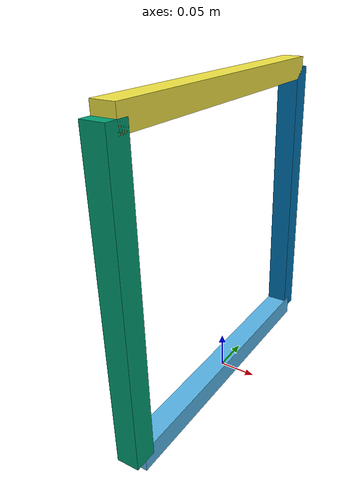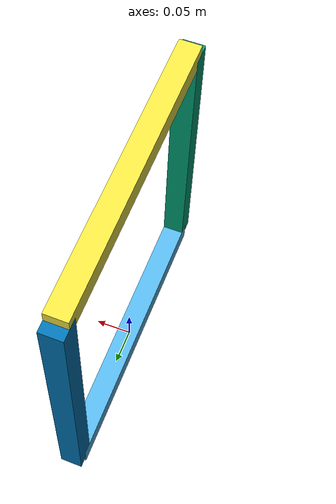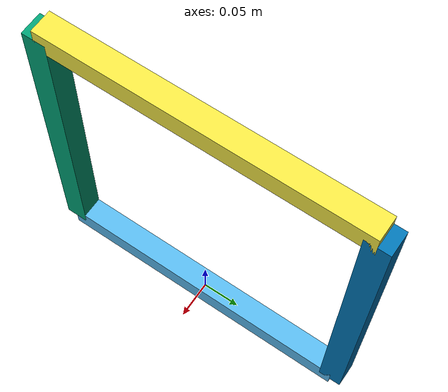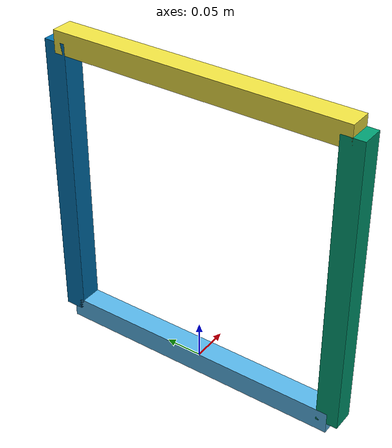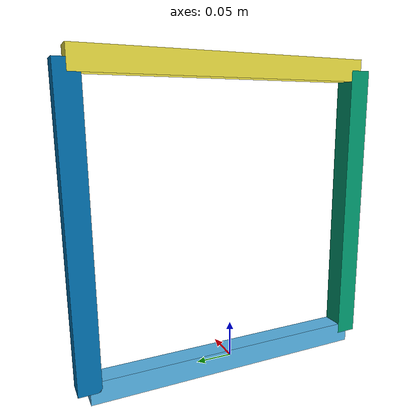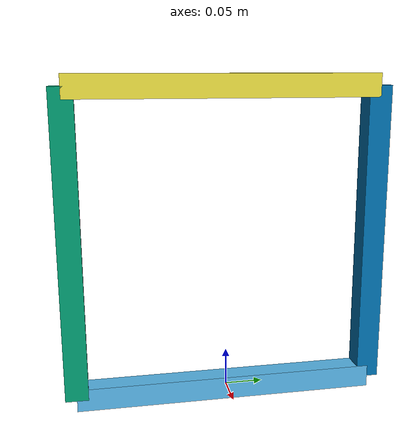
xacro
<?xml version="1.0" ?>
<robot xmlns:xacro="http://ros.org/wiki/xacro" name="four_bar_linkage">

<xacro:property name="h" value="0.03" />
<xacro:property name="w" value="0.4" />
<xacro:property name="d" value="0.03" />
<xacro:property name="m" value="1." />
<xacro:property name="PI" value="3.1415" />

<link name="world"/>

<link name="base_link">
	<inertial>
		<origin rpy="0 0 0" xyz="0 0 0"/>
		<mass value="${m}"/>
		<inertia ixx="${(m/12.) * (h**2 + w**2)}" ixy="0." ixz="0." iyy="${(m/12.) * (h**2 + d**2)}" iyz="0." izz="${(m/12.) * (w**2 + d**2)}"/>
	</inertial>
	<visual>
		<origin rpy="0 0 0" xyz="0 0 0"/>
		<material name=""/>
		<geometry name="">
			<box size="${d} ${w} ${h}"/>
		</geometry>
	</visual>
	<collision>
		<origin rpy="0 0 0" xyz="0 0 0"/>
		<geometry name="">
			<box size="${d} ${w} ${h}"/>
		</geometry>
	</collision>
</link>

<link name="link1">
	<inertial>
		<origin rpy="0 0 0" xyz="0 ${-w/2.} 0"/>
		<mass value="${m}"/>
		<inertia ixx="${(m/12.) * (h**2 + w**2)}" ixy="0." ixz="0." iyy="${(m/12.) * (h**2 + d**2)}" iyz="0." izz="${(m/12.) * (w**2 + d**2)}"/>
	</inertial>
	<visual>
		<origin rpy="0 0 0" xyz="0 ${-w/2.} 0"/>
		<material name=""/>
		<geometry name="">
			<box size="${d} ${w} ${h}"/>
		</geometry>
	</visual>
	<collision>
		<origin rpy="0 0 0" xyz="0 ${-w/2.} 0"/>
		<geometry name="">
			<box size="${d} ${w} ${h}"/>
		</geometry>
	</collision>
</link>

<link name="link2">
	<inertial>
		<origin rpy="0 0 0" xyz="0 ${-w/2.} 0"/>
		<mass value="${m}"/>
		<inertia ixx="${(m/12.) * (h**2 + w**2)}" ixy="0." ixz="0." iyy="${(m/12.) * (h**2 + d**2)}" iyz="0." izz="${(m/12.) * (w**2 + d**2)}"/>
	</inertial>
	<visual>
		<origin rpy="0 0 0" xyz="0 ${-w/2.} 0"/>
		<material name=""/>
		<geometry name="">
			<box size="${d} ${w} ${h}"/>
		</geometry>
	</visual>
	<collision>
		<origin rpy="0 0 0" xyz="0 ${-w/2.} 0"/>
		<geometry name="">
			<box size="${d} ${w} ${h}"/>
		</geometry>
	</collision>
</link>

<link name="link3">
	<inertial>
		<origin rpy="0 0 0" xyz="0 ${-w/2.} 0"/>
		<mass value="${m}"/>
		<inertia ixx="${(m/12.) * (h**2 + w**2)}" ixy="0." ixz="0." iyy="${(m/12.) * (h**2 + d**2)}" iyz="0." izz="${(m/12.) * (w**2 + d**2)}"/>
	</inertial>
	<visual>
		<origin rpy="0 0 0" xyz="0 ${-w/2.} 0"/>
		<material name=""/>
		<geometry name="">
			<box size="${d} ${w} ${h}"/>
		</geometry>
	</visual>
	<collision>
		<origin rpy="0 0 0" xyz="0 ${-w/2.} 0"/>
		<geometry name="">
			<box size="${d} ${w} ${h}"/>
		</geometry>
	</collision>
</link>

<link name="frame0"/>
<link name="frame1"/>

<joint name="base_joint" type="fixed">
	<parent link="world"/>
	<child link="base_link"/>
	<origin rpy="0 0 0" xyz="0 0 0"/>
</joint>

<joint name="Joint1" type="revolute">
	<parent link="base_link"/>
	<child link="link1"/>
	<origin rpy="${-PI/2.} 0 0" xyz="0 ${-w/2.} 0"/>
	<axis xyz="1 0 0"/>
	<limit effort="140" lower="${-PI}" upper="${PI}" velocity="10."/>
</joint>

<joint name="Joint2" type="revolute">
	<parent link="link1"/>
	<child link="link2"/>
	<origin rpy="${-PI/2.} 0 0" xyz="0 ${-w} 0"/>
	<axis xyz="1 0 0"/>
	<limit effort="140" lower="${-PI}" upper="${PI}" velocity="10."/>
</joint>

<joint name="Joint3" type="revolute">
	<parent link="base_link"/>
	<child link="link3"/>
	<origin rpy="${-PI/2.} 0 0" xyz="0 ${w/2.} 0"/>
	<axis xyz="1 0 0"/>
	<limit effort="140" lower="${-PI}" upper="${PI}" velocity="10."/>
</joint>

<joint name="Joint4" type="fixed">
	<parent link="link3"/>
	<child link="frame0"/>
	<origin rpy="0 0 0" xyz="0 ${-w} 0"/>
</joint>

<joint name="Joint5" type="fixed">
	<parent link="link2"/>
	<child link="frame1"/>
	<origin rpy="0 0 0" xyz="0 ${-w} 0"/>
</joint>

</robot>
